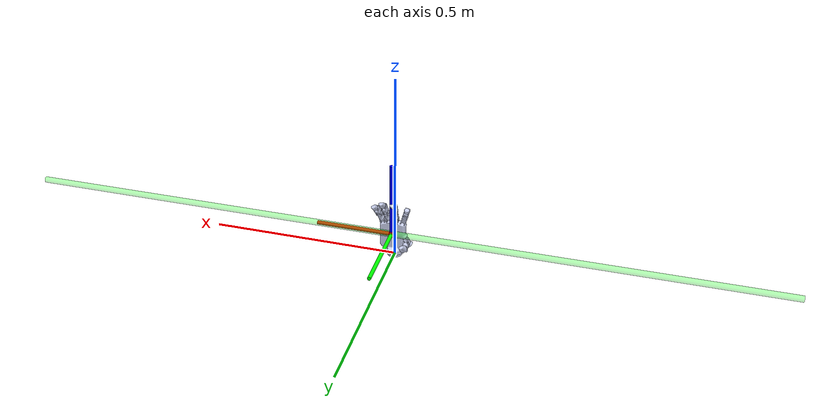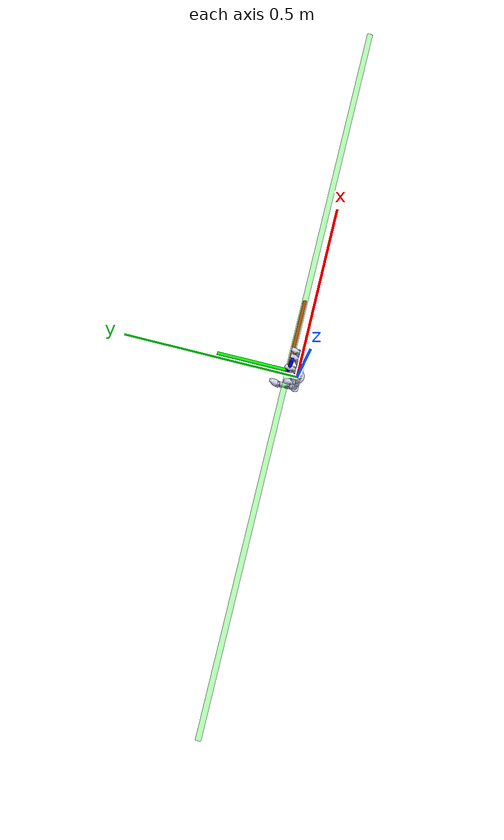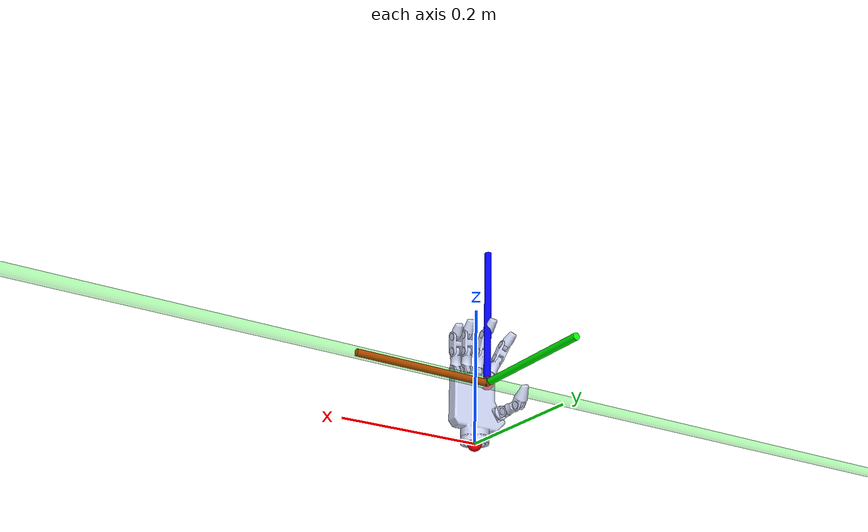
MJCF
<mujoco model="hand_right_sim">
    <compiler angle="radian"
              meshdir="/home/kavin/Documents/RosProjects/robot_ws/src/hand_right_sim/meshes/"/>

    <default>
        <geom density="5.0"/>
        <default class="joint">
            <joint axis="1 0 0" range="0 1.57" limited="true" damping="0.8" armature="0.0002" frictionloss="0.01"/>
            <position kp="8" ctrlrange="0 2.14"/>
        </default>
    </default>
    <size njmax="500" nconmax="100"/>
    <asset>
        <mesh name="palm_right" file="palm_right.STL"/>
        <mesh name="finger_11_right" file="finger_11_right.STL"/>
        <mesh name="finger_12_right" file="finger_12_right.STL"/>
        <mesh name="finger_13_right" file="finger_13_right.STL"/>
        <mesh name="finger_14_right" file="finger_14_right.STL"/>
        <mesh name="finger_21_right" file="finger_21_right.STL"/>
        <mesh name="finger_22_right" file="finger_22_right.STL"/>
        <mesh name="finger_23_right" file="finger_23_right.STL"/>
        <mesh name="finger_31_right" file="finger_31_right.STL"/>
        <mesh name="finger_32_right" file="finger_32_right.STL"/>
        <mesh name="finger_33_right" file="finger_33_right.STL"/>
        <mesh name="finger_41_right" file="finger_41_right.STL"/>
        <mesh name="finger_42_right" file="finger_42_right.STL"/>
        <mesh name="finger_43_right" file="finger_43_right.STL"/>
        <mesh name="finger_51_right" file="finger_51_right.STL"/>
        <mesh name="finger_52_right" file="finger_52_right.STL"/>
        <mesh name="finger_53_right" file="finger_53_right.STL"/>
    </asset>
    <worldbody>
        <body name="palm_right">
            <site name="ft_frame" pos="0 0 0" size="0.01 0.01 0.01" rgba="1 0 0 1" type="sphere" group="1"/>
            <body name="eef" pos="0 0.03 0.08">
                <site name="grip_site" pos="0 0 0" size="0.01 0.01 0.01" rgba="1 0 0 0.5" type="sphere" group="1"/>
                <site name="ee_x" pos="0.1 0 0" size="0.005 .1" quat="0.707105  0 0.707108 0 " rgba="1 0 0 1" type="cylinder" group="1"/>
                <site name="ee_y" pos="0 0.1 0" size="0.005 .1" quat="0.707105 0.707108 0 0" rgba="0 1 0 1" type="cylinder" group="1"/>
                <site name="ee_z" pos="0 0 0.1" size="0.005 .1" quat="1 0 0 0" rgba="0 0 1 1" type="cylinder" group="1"/>
                <site name="grip_site_cylinder" pos="0 0 0" size="0.008 1" quat="0.707105  0 0.707108 0 " rgba="0 1 0 0.3" type="cylinder" group="1"/>
            </body>

            <geom type="mesh" contype="0" conaffinity="0" group="1" rgba="0.792157 0.819608 0.933333 1" mesh="palm_right"/>
            <geom type="mesh" rgba="0.792157 0.819608 0.933333 1" mesh="palm_right"/>
            <body name="finger_11_right" pos="-0.033156 0 0.046854" quat="-0.311001 0.357966 -0.577419 -0.664625">
                <inertial pos="0 0 0.00296384" quat="0.707107 0 0 0.707107" mass="0.00158261" diaginertia="6.47978e-08 5.66929e-08 5.56708e-08"/>
                <geom type="mesh" contype="0" conaffinity="0" group="1" rgba="0.792157 0.819608 0.933333 1" mesh="finger_11_right"/>
                <geom type="mesh" rgba="0.792157 0.819608 0.933333 1" mesh="finger_11_right"/>
                <body name="finger_12_right" pos="0 0 0.005" quat="0.787626 0 0 0.616154">
                    <inertial pos="1.34465e-10 -1.6126e-11 0.00925016" quat="0.707107 0 0 0.707107" mass="0.00237615" diaginertia="1.18675e-07 1.15819e-07 1.06634e-07"/>
                    <geom type="mesh" contype="0" conaffinity="0" group="1" rgba="0.792157 0.819608 0.933333 1" mesh="finger_12_right"/>
                    <geom type="mesh" rgba="0.792157 0.819608 0.933333 1" mesh="finger_12_right"/>
                    <body name="finger_13_right" pos="0 0 0.0175">
                        <inertial pos="2.82781e-08 -2.39368e-07 0.0134786" quat="0.70735 -4.56959e-06 4.56645e-06 0.706863" mass="0.00477507" diaginertia="5.13036e-07 5.06539e-07 1.11818e-07"/>
                        <joint class="joint" name="j_13_right" axis="-1 0 0"/>
                        <geom type="mesh" contype="0" conaffinity="0" group="1" rgba="0.792157 0.819608 0.933333 1" mesh="finger_13_right"/>
                        <geom type="mesh" rgba="0.792157 0.819608 0.933333 1" mesh="finger_13_right"/>
                        <body name="finger_14_right" pos="0 0 0.027" quat="0.939693 -0.342019 0 0">
                            <inertial pos="1.258e-05 -0.000148503 0.0147394" quat="0.704715 0.00742828 -0.00610749 0.709425" mass="0.0045956" diaginertia="3.58606e-07 3.47268e-07 1.55217e-07"/>
                            <geom type="mesh" contype="0" conaffinity="0" group="1" rgba="0.792157 0.819608 0.933333 1" mesh="finger_14_right"/>
                            <geom type="mesh" rgba="0.792157 0.819608 0.933333 1" mesh="finger_14_right"/>
                        </body>
                    </body>
                </body>
            </body>
            <body name="finger_21_right" pos="-0.023151 -0.00042188 0.10268" quat="0.0254432 -0.144315 0.171775 0.974176">
                <inertial pos="-3.24152e-08 -2.51581e-07 0.0147548" quat="0.706869 4.57535e-06 -4.57842e-06 0.707344" mass="0.00477507" diaginertia="5.13037e-07 5.06539e-07 1.11818e-07"/>
                <joint class="joint" name="j_21_right"/>
                <geom type="mesh" contype="0" conaffinity="0" group="1" rgba="0.792157 0.819608 0.933333 1" mesh="finger_21_right"/>
                <geom type="mesh" rgba="0.792157 0.819608 0.933333 1" mesh="finger_21_right"/>
                <body name="finger_22_right" pos="0 0 0.028233" quat="0.999917 0.0129201 0 0">
                    <inertial pos="0 0 0.0105" mass="0.00239726" diaginertia="1.69655e-07 1.65763e-07 9.58619e-08"/>
                    <joint class="joint" name="j_22_right"/>
                    <geom type="mesh" contype="0" conaffinity="0" group="1" rgba="0.792157 0.819608 0.933333 1" mesh="finger_22_right"/>
                    <geom type="mesh" rgba="0.792157 0.819608 0.933333 1" mesh="finger_22_right"/>
                    <body name="finger_23_right" pos="0 0 0.021" quat="0.965926 0.25882 0 0">
                        <inertial pos="1.84084e-05 -3.05369e-05 0.00921808" quat="0.713531 0.00165565 0.000480641 0.700622" mass="0.00351081" diaginertia="2.40713e-07 2.34316e-07 7.61095e-08"/>
                        <geom type="mesh" contype="0" conaffinity="0" group="1" rgba="0.792157 0.819608 0.933333 1" mesh="finger_23_right"/>
                        <geom type="mesh" rgba="0.792157 0.819608 0.933333 1" mesh="finger_23_right"/>
                    </body>
                </body>
            </body>
            <body name="finger_31_right" pos="-0.003285 -0.00042188 0.10558" quat="-3.6174e-06 -6.37853e-07 -0.17365 -0.984807">
                <inertial pos="-3.25832e-08 -2.51593e-07 0.0147548" quat="0.70687 4.57531e-06 -4.57838e-06 0.707344" mass="0.00477507" diaginertia="5.13037e-07 5.06539e-07 1.11818e-07"/>
                <joint class="joint" name="j_31_right"/>
                <geom type="mesh" contype="0" conaffinity="0" group="1" rgba="0.792157 0.819608 0.933333 1" mesh="finger_31_right"/>
                <geom type="mesh" rgba="0.792157 0.819608 0.933333 1" mesh="finger_31_right"/>
                <body name="finger_32_right" pos="0 0 0.028233" quat="0.999592 0.0285586 0 0">
                    <inertial pos="0 0 0.0125" mass="0.00316954" diaginertia="2.43247e-07 2.35819e-07 1.2078e-07"/>
                    <joint class="joint" name="j_32_right"/>
                    <geom type="mesh" contype="0" conaffinity="0" group="1" rgba="0.792157 0.819608 0.933333 1" mesh="finger_32_right"/>
                    <geom type="mesh" rgba="0.792157 0.819608 0.933333 1" mesh="finger_32_right"/>
                    <body name="finger_33_right" pos="0 0 0.025" quat="0.965926 0.25882 0 0">
                        <inertial pos="1.96219e-05 -3.05376e-05 0.0109935" quat="0.713649 0.00131231 0.000487925 0.700502" mass="0.00407938" diaginertia="3.4499e-07 3.3759e-07 9.02118e-08"/>
                        <geom type="mesh" contype="0" conaffinity="0" group="1" rgba="0.792157 0.819608 0.933333 1" mesh="finger_33_right"/>
                        <geom type="mesh" rgba="0.792157 0.819608 0.933333 1" mesh="finger_33_right"/>
                    </body>
                </body>
            </body>
            <body name="finger_41_right" pos="0.015852 -0.00042188 0.10376" quat="-0.0169777 0.096263 0.172819 0.980091">
                <inertial pos="-3.23309e-08 -2.51623e-07 0.0147548" quat="0.706869 4.57568e-06 -4.57875e-06 0.707344" mass="0.00477507" diaginertia="5.13037e-07 5.06539e-07 1.11818e-07"/>
                <joint class="joint" name="j_41_right"/>
                <geom type="mesh" contype="0" conaffinity="0" group="1" rgba="0.792157 0.819608 0.933333 1" mesh="finger_41_right"/>
                <geom type="mesh" rgba="0.792157 0.819608 0.933333 1" mesh="finger_41_right"/>
                <body name="finger_42_right" pos="0 0 0.028233" quat="0.99948 -0.0322514 0 0">
                    <inertial pos="0 0 0.011" mass="0.00259033" diaginertia="1.86013e-07 1.81238e-07 1.02092e-07"/>
                    <joint class="joint" name="j_42_right"/>
                    <geom type="mesh" contype="0" conaffinity="0" group="1" rgba="0.792157 0.819608 0.933333 1" mesh="finger_42_right"/>
                    <geom type="mesh" rgba="0.792157 0.819608 0.933333 1" mesh="finger_42_right"/>
                    <body name="finger_43_right" pos="0 0 0.022" quat="0.965926 0.25882 0 0">
                        <inertial pos="1.83933e-05 -3.04606e-05 0.00921809" quat="0.713523 0.00165454 0.000481261 0.70063" mass="0.00351083" diaginertia="2.40711e-07 2.34318e-07 7.61094e-08"/>
                        <geom type="mesh" contype="0" conaffinity="0" group="1" rgba="0.792157 0.819608 0.933333 1" mesh="finger_43_right"/>
                        <geom type="mesh" rgba="0.792157 0.819608 0.933333 1" mesh="finger_43_right"/>
                    </body>
                </body>
            </body>
            <body name="finger_51_right" pos="0.032224 -0.00042188 0.099812" quat="-0.0245697 0.139319 0.171904 0.974903">
                <inertial pos="-3.23106e-08 -2.51629e-07 0.0147548" quat="0.706869 4.57573e-06 -4.57881e-06 0.707344" mass="0.00477507" diaginertia="5.13037e-07 5.06539e-07 1.11818e-07"/>
                <joint class="joint" name="j_51_right"/>
                <geom type="mesh" contype="0" conaffinity="0" group="1" rgba="0.792157 0.819608 0.933333 1" mesh="finger_51_right"/>
                <geom type="mesh" rgba="0.792157 0.819608 0.933333 1" mesh="finger_51_right"/>
                <body name="finger_52_right" pos="0 0 0.028233" quat="0.999549 0.0300175 0 0">
                    <inertial pos="0 0 0.01" mass="0.00220419" diaginertia="1.54494e-07 1.51487e-07 8.96323e-08"/>
                    <joint class="joint" name="j_52_right"/>
                    <geom type="mesh" contype="0" conaffinity="0" group="1" rgba="0.792157 0.819608 0.933333 1" mesh="finger_52_right"/>
                    <geom type="mesh" rgba="0.792157 0.819608 0.933333 1" mesh="finger_52_right"/>
                    <body name="finger_53_right" pos="0 0 0.02" quat="0.965926 0.25882 0 0">
                        <inertial pos="1.77714e-05 -3.13552e-05 0.00785411" quat="0.71222 0.00206589 0.000426732 0.701954" mass="0.0030847" diaginertia="1.78801e-07 1.73041e-07 6.55997e-08"/>
                        <geom type="mesh" contype="0" conaffinity="0" group="1" rgba="0.792157 0.819608 0.933333 1" mesh="finger_53_right"/>
                        <geom type="mesh" rgba="0.792157 0.819608 0.933333 1" mesh="finger_53_right"/>
                    </body>
                </body>
            </body>
        </body>
    </worldbody>

    <contact>
        <exclude body1="palm_right" body2="finger_11_right"/>
        <exclude body1="palm_right" body2="finger_12_right"/>
        <exclude body1="palm_right" body2="finger_21_right"/>
        <exclude body1="palm_right" body2="finger_31_right"/>
        <exclude body1="palm_right" body2="finger_41_right"/>
        <exclude body1="palm_right" body2="finger_51_right"/>
    </contact>

    <tendon>
        <fixed name="j_20_right">
            <joint joint="j_21_right" coef="1"/>
            <joint joint="j_22_right" coef="1"/>
        </fixed>
        <fixed name="j_30_right">
            <joint joint="j_31_right" coef="1"/>
            <joint joint="j_32_right" coef="1"/>
        </fixed>
        <fixed name="j_40_right">
            <joint joint="j_41_right" coef="1"/>
            <joint joint="j_42_right" coef="1"/>
        </fixed>
        <fixed name="j_50_right">
            <joint joint="j_51_right" coef="1"/>
            <joint joint="j_52_right" coef="1"/>
        </fixed>
    </tendon>

    <actuator>
        <position class="joint" name="j13_right_T" joint="j_13_right" ctrllimited="true" ctrlrange="0 0.4"/>
        <position class="joint" name="j20_right_T" tendon="j_20_right" ctrllimited="true" ctrlrange="0 2.14"/>
        <position class="joint" name="j30_right_T" tendon="j_30_right" ctrllimited="true" ctrlrange="0 2.14"/>
        <position class="joint" name="j40_right_T" tendon="j_40_right" ctrllimited="true" ctrlrange="0 2.14"/>
        <position class="joint" name="j50_right_T" tendon="j_50_right" ctrllimited="true" ctrlrange="0 2.14"/>
    </actuator>
    <sensor>
        <force name="force_ee" site="ft_frame"/>
        <torque name="torque_ee" site="ft_frame"/>
    </sensor>
</mujoco>
